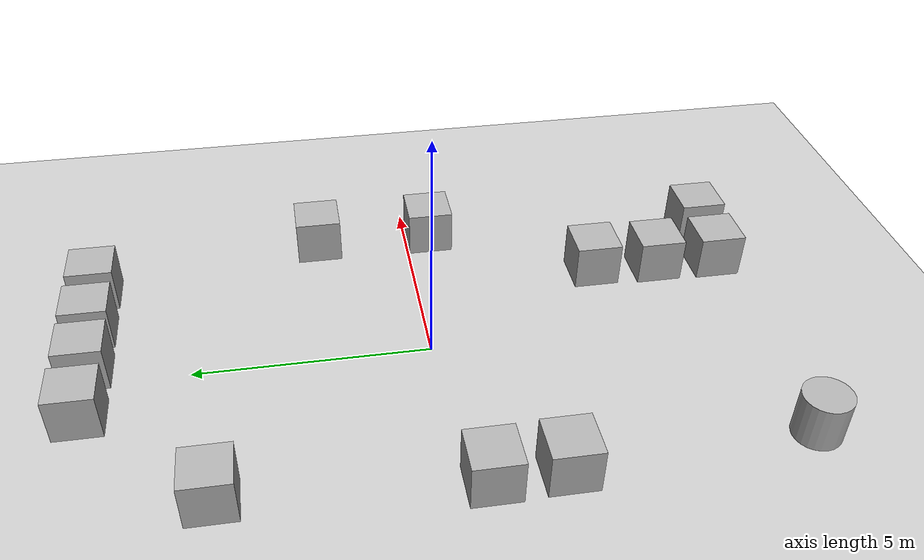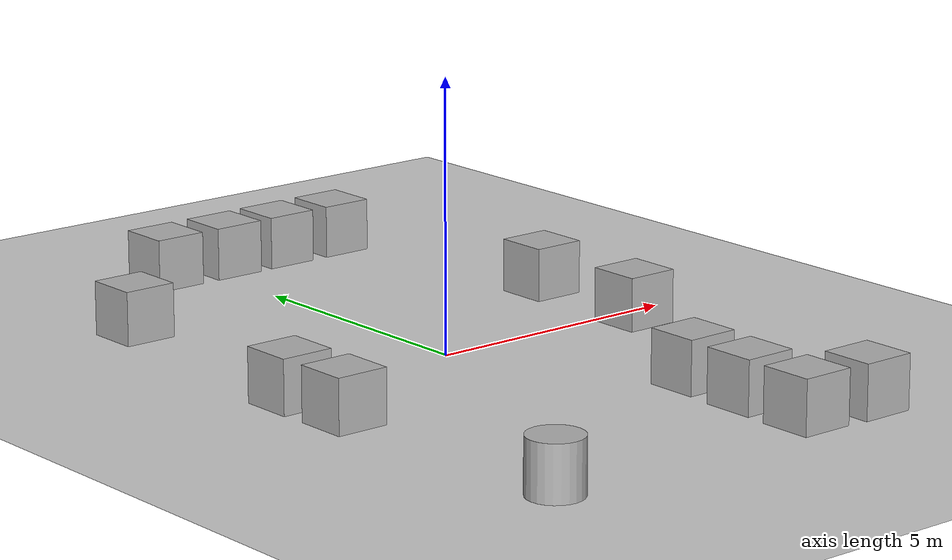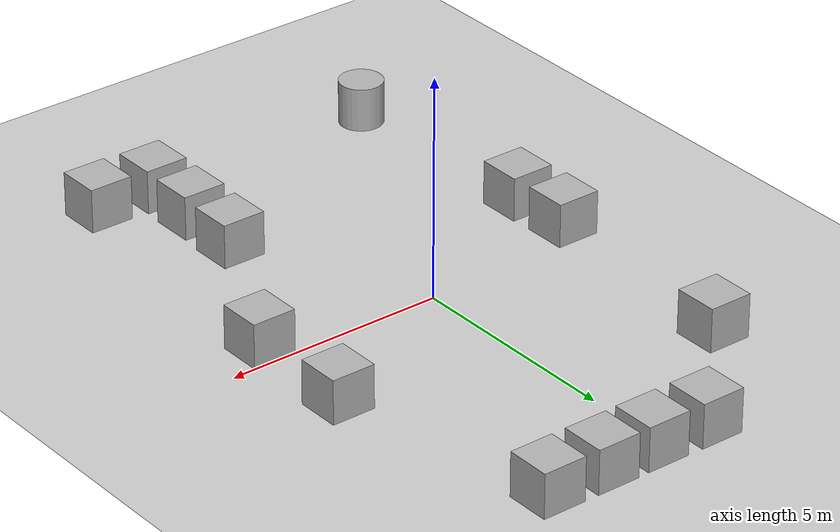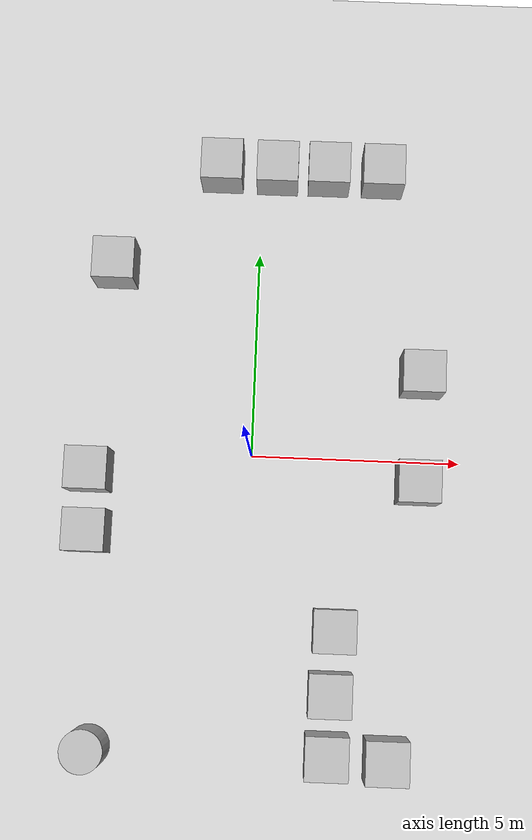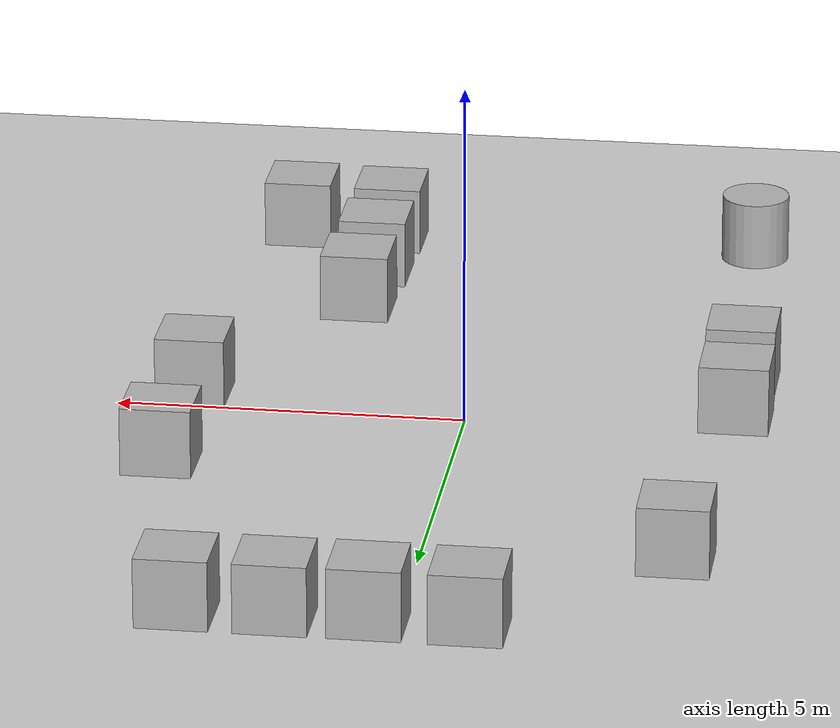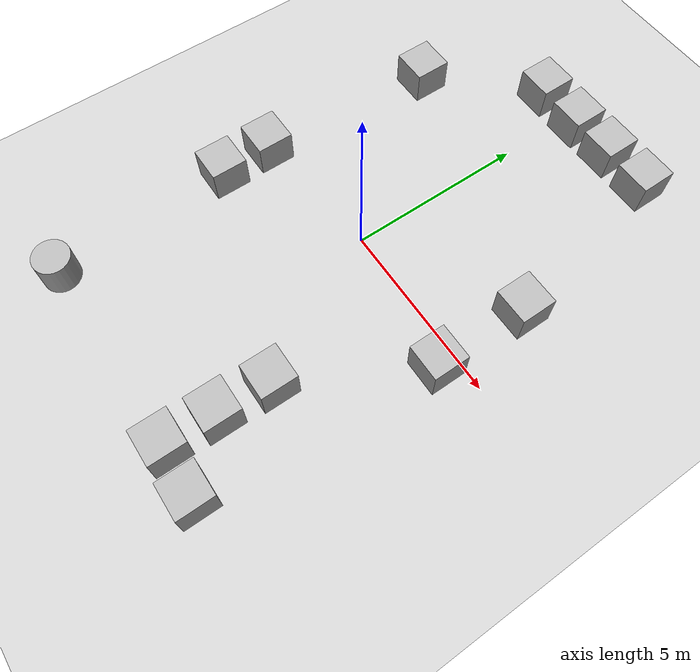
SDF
<sdf version="1.10">
 <world name="world1">
  <physics name="1ms" type="ignored">
   <max_step_size>0.001</max_step_size>
   <real_time_factor>1</real_time_factor>
   <real_time_update_rate>1000</real_time_update_rate>
  </physics>
  <plugin name="gz::sim::systems::Physics" filename="gz-sim-physics-system"/>
  <plugin name="gz::sim::systems::UserCommands" filename="gz-sim-user-commands-system"/>
  <plugin name="gz::sim::systems::SceneBroadcaster" filename="gz-sim-scene-broadcaster-system"/>
  <plugin name="gz::sim::systems::Contact" filename="gz-sim-contact-system"/>
  <plugin name="gz::sim::systems::Sensors" filename="gz-sim-sensors-system">
   <render_engine>ogre2</render_engine>
  </plugin>
  <plugin name="gz::sim::systems::Imu" filename="gz-sim-imu-system"/>
  <gravity>0 0 -9.8000000000000007</gravity>
  <magnetic_field>5.5644999999999998e-06 2.2875799999999999e-05 -4.2388400000000002e-05</magnetic_field>
  <atmosphere type="adiabatic"/>
  <scene>
   <ambient>0.400000006 0.400000006 0.400000006 1</ambient>
   <background>0.699999988 0.699999988 0.699999988 1</background>
   <shadows>true</shadows>
  </scene>
  <model name="ground_plane">
   <static>true</static>
   <link name="link">
    <collision name="collision">
     <geometry><plane><normal>0 0 1</normal><size>100 100</size></plane></geometry>
    </collision>
    <visual name="visual">
     <geometry><plane><normal>0 0 1</normal><size>100 100</size></plane></geometry>
     <material>
      <ambient>0.800000012 0.800000012 0.800000012 1</ambient>
      <diffuse>0.800000012 0.800000012 0.800000012 1</diffuse>
      <specular>0.800000012 0.800000012 0.800000012 1</specular>
     </material>
    </visual>
    <inertial>
     <mass>1</mass>
     <inertia><ixx>1</ixx><ixy>0</ixy><ixz>0</ixz><iyy>1</iyy><iyz>0</iyz><izz>1</izz></inertia>
    </inertial>
   </link>
  </model>
  <model name="box">
   <pose>2.1043132491753633 -4.062245548405631 0.49999999961383335 2.2173168376473367e-21 -7.874254222518039e-21 -1.0220815815193421e-21</pose>
   <link name="box_link">
    <inertial>
     <inertia><ixx>0.16666</ixx><ixy>0</ixy><ixz>0</ixz><iyy>0.16666</iyy><iyz>0</iyz><izz>0.16666</izz></inertia>
     <mass>1</mass>
    </inertial>
    <collision name="box_collision"><geometry><box><size>1 1 1</size></box></geometry></collision>
    <visual name="box_visual">
     <geometry><box><size>1 1 1</size></box></geometry>
     <material>
      <ambient>0.300000012 0.300000012 0.300000012 1</ambient>
      <diffuse>0.699999988 0.699999988 0.699999988 1</diffuse>
      <specular>1 1 1 1</specular>
     </material>
    </visual>
   </link>
   <static>false</static>
  </model>
  <model name="cylinder">
   <pose>-3.5293640432081261 -6.9421882413476128 0.49999944330790008 -6.060487416560336e-21 6.7803504527240404e-20 5.9195822013363546e-21</pose>
   <link name="cylinder_link">
    <inertial>
     <inertia>
      <ixx>0.14580000000000001</ixx>
      <ixy>0</ixy>
      <ixz>0</ixz>
      <iyy>0.14580000000000001</iyy>
      <iyz>0</iyz>
      <izz>0.125</izz>
     </inertia>
     <mass>1</mass>
    </inertial>
    <collision name="cylinder_collision">
     <geometry><cylinder><radius>0.5</radius><length>1</length></cylinder></geometry>
    </collision>
    <visual name="cylinder_visual">
     <geometry><cylinder><radius>0.5</radius><length>1</length></cylinder></geometry>
     <material>
      <ambient>0.300000012 0.300000012 0.300000012 1</ambient>
      <diffuse>0.699999988 0.699999988 0.699999988 1</diffuse>
      <specular>1 1 1 1</specular>
     </material>
    </visual>
   </link>
   <static>false</static>
  </model>
  <model name="box_0">
   <pose>4.0153260231018066 2.0732800960540771 0.49999999980497606 6.4161747848937477e-22 -3.7891236528671386e-21 -1.4224602295442765e-21</pose>
   <link name="box_link">
    <inertial>
     <inertia><ixx>0.16666</ixx><ixy>0</ixy><ixz>0</ixz><iyy>0.16666</iyy><iyz>0</iyz><izz>0.16666</izz></inertia>
     <mass>1</mass>
    </inertial>
    <collision name="box_collision"><geometry><box><size>1 1 1</size></box></geometry></collision>
    <visual name="box_visual">
     <geometry><box><size>1 1 1</size></box></geometry>
     <material>
      <ambient>0.300000012 0.300000012 0.300000012 1</ambient>
      <diffuse>0.699999988 0.699999988 0.699999988 1</diffuse>
      <specular>1 1 1 1</specular>
     </material>
    </visual>
   </link>
   <static>false</static>
  </model>
  <model name="box_1">
   <pose>-3.4693177423851069 4.5488528938618709 0.49999999961383335 2.2173168376473367e-21 -7.874254222518039e-21 -1.0220815815193421e-21</pose>
   <link name="box_link">
    <inertial>
     <inertia><ixx>0.16666</ixx><ixy>0</ixy><ixz>0</ixz><iyy>0.16666</iyy><iyz>0</iyz><izz>0.16666</izz></inertia>
     <mass>1</mass>
    </inertial>
    <collision name="box_collision"><geometry><box><size>1 1 1</size></box></geometry></collision>
    <visual name="box_visual">
     <geometry><box><size>1 1 1</size></box></geometry>
     <material>
      <ambient>0.300000012 0.300000012 0.300000012 1</ambient>
      <diffuse>0.699999988 0.699999988 0.699999988 1</diffuse>
      <specular>1 1 1 1</specular>
     </material>
    </visual>
   </link>
   <static>false</static>
  </model>
  <model name="box_2">
   <pose>0.36498421430587769 7.0897002220153809 0.49999999980497606 1.5282380184882812e-20 -1.1848821427094392e-20 -1.2445356815215727e-22</pose>
   <link name="box_link">
    <inertial>
     <inertia><ixx>0.16666</ixx><ixy>0</ixy><ixz>0</ixz><iyy>0.16666</iyy><iyz>0</iyz><izz>0.16666</izz></inertia>
     <mass>1</mass>
    </inertial>
    <collision name="box_collision"><geometry><box><size>1 1 1</size></box></geometry></collision>
    <visual name="box_visual">
     <geometry><box><size>1 1 1</size></box></geometry>
     <material>
      <ambient>0.300000012 0.300000012 0.300000012 1</ambient>
      <diffuse>0.699999988 0.699999988 0.699999988 1</diffuse>
      <specular>1 1 1 1</specular>
     </material>
    </visual>
   </link>
   <static>false</static>
  </model>
  <model name="box_3">
   <pose>3.9696661569093501 -0.53197440774561255 0.49999999980497606 -1.2983313967284496e-22 1.7665415001559131e-21 7.4418389397464927e-22</pose>
   <link name="box_link">
    <inertial>
     <inertia><ixx>0.16666</ixx><ixy>0</ixy><ixz>0</ixz><iyy>0.16666</iyy><iyz>0</iyz><izz>0.16666</izz></inertia>
     <mass>1</mass>
    </inertial>
    <collision name="box_collision"><geometry><box><size>1 1 1</size></box></geometry></collision>
    <visual name="box_visual">
     <geometry><box><size>1 1 1</size></box></geometry>
     <material>
      <ambient>0.300000012 0.300000012 0.300000012 1</ambient>
      <diffuse>0.699999988 0.699999988 0.699999988 1</diffuse>
      <specular>1 1 1 1</specular>
     </material>
    </visual>
   </link>
   <static>false</static>
  </model>
  <model name="box_4">
   <pose>1.6181659698486328 7.1010198593139648 0.49999999980497606 1.4765625807577881e-20 -7.3173255572240675e-21 -1.0040576639327147e-21</pose>
   <link name="box_link">
    <inertial>
     <inertia><ixx>0.16666</ixx><ixy>0</ixy><ixz>0</ixz><iyy>0.16666</iyy><iyz>0</iyz><izz>0.16666</izz></inertia>
     <mass>1</mass>
    </inertial>
    <collision name="box_collision"><geometry><box><size>1 1 1</size></box></geometry></collision>
    <visual name="box_visual">
     <geometry><box><size>1 1 1</size></box></geometry>
     <material>
      <ambient>0.300000012 0.300000012 0.300000012 1</ambient>
      <diffuse>0.699999988 0.699999988 0.699999988 1</diffuse>
      <specular>1 1 1 1</specular>
     </material>
    </visual>
   </link>
   <static>false</static>
  </model>
  <model name="box_5">
   <pose>2.0440408005197317 -5.514430727292293 0.49999999980497606 1.0048033485058014e-21 -2.4640853465547739e-21 -3.9210766489770922e-22</pose>
   <link name="box_link">
    <inertial>
     <inertia><ixx>0.16666</ixx><ixy>0</ixy><ixz>0</ixz><iyy>0.16666</iyy><iyz>0</iyz><izz>0.16666</izz></inertia>
     <mass>1</mass>
    </inertial>
    <collision name="box_collision"><geometry><box><size>1 1 1</size></box></geometry></collision>
    <visual name="box_visual">
     <geometry><box><size>1 1 1</size></box></geometry>
     <material>
      <ambient>0.300000012 0.300000012 0.300000012 1</ambient>
      <diffuse>0.699999988 0.699999988 0.699999988 1</diffuse>
      <specular>1 1 1 1</specular>
     </material>
    </visual>
   </link>
   <static>false</static>
  </model>
  <model name="box_6">
   <pose>2.0082449868233652 -6.9027803127018821 0.49999999980497606 1.0048033485058014e-21 -2.4640853465547739e-21 -3.9210766489770922e-22</pose>
   <link name="box_link">
    <inertial>
     <inertia><ixx>0.16666</ixx><ixy>0</ixy><ixz>0</ixz><iyy>0.16666</iyy><iyz>0</iyz><izz>0.16666</izz></inertia>
     <mass>1</mass>
    </inertial>
    <collision name="box_collision"><geometry><box><size>1 1 1</size></box></geometry></collision>
    <visual name="box_visual">
     <geometry><box><size>1 1 1</size></box></geometry>
     <material>
      <ambient>0.300000012 0.300000012 0.300000012 1</ambient>
      <diffuse>0.699999988 0.699999988 0.699999988 1</diffuse>
      <specular>1 1 1 1</specular>
     </material>
    </visual>
   </link>
   <static>false</static>
  </model>
  <model name="box_7">
   <pose>3.3801522254943848 -6.9534201622009277 0.49999999980497606 5.7155621579102632e-21 -6.5691289902797882e-21 -1.948037898629101e-22</pose>
   <link name="box_link">
    <inertial>
     <inertia><ixx>0.16666</ixx><ixy>0</ixy><ixz>0</ixz><iyy>0.16666</iyy><iyz>0</iyz><izz>0.16666</izz></inertia>
     <mass>1</mass>
    </inertial>
    <collision name="box_collision"><geometry><box><size>1 1 1</size></box></geometry></collision>
    <visual name="box_visual">
     <geometry><box><size>1 1 1</size></box></geometry>
     <material>
      <ambient>0.300000012 0.300000012 0.300000012 1</ambient>
      <diffuse>0.699999988 0.699999988 0.699999988 1</diffuse>
      <specular>1 1 1 1</specular>
     </material>
    </visual>
   </link>
   <static>false</static>
  </model>
  <model name="box_8">
   <pose>-3.8261153021218912 -0.50421541274277959 0.49999999980497606 4.510122445939706e-21 -4.811254041875492e-21 7.5000850150618032e-22</pose>
   <link name="box_link">
    <inertial>
     <inertia><ixx>0.16666</ixx><ixy>0</ixy><ixz>0</ixz><iyy>0.16666</iyy><iyz>0</iyz><izz>0.16666</izz></inertia>
     <mass>1</mass>
    </inertial>
    <collision name="box_collision"><geometry><box><size>1 1 1</size></box></geometry></collision>
    <visual name="box_visual">
     <geometry><box><size>1 1 1</size></box></geometry>
     <material>
      <ambient>0.300000012 0.300000012 0.300000012 1</ambient>
      <diffuse>0.699999988 0.699999988 0.699999988 1</diffuse>
      <specular>1 1 1 1</specular>
     </material>
    </visual>
   </link>
   <static>false</static>
  </model>
  <model name="box_9">
   <pose>-3.7912817001342773 -1.9467400312423706 0.49999999980497606 6.7760579306190881e-21 -1.1067267553950163e-20 4.0071036179897783e-22</pose>
   <link name="box_link">
    <inertial>
     <inertia><ixx>0.16666</ixx><ixy>0</ixy><ixz>0</ixz><iyy>0.16666</iyy><iyz>0</iyz><izz>0.16666</izz></inertia>
     <mass>1</mass>
    </inertial>
    <collision name="box_collision"><geometry><box><size>1 1 1</size></box></geometry></collision>
    <visual name="box_visual">
     <geometry><box><size>1 1 1</size></box></geometry>
     <material>
      <ambient>0.300000012 0.300000012 0.300000012 1</ambient>
      <diffuse>0.699999988 0.699999988 0.699999988 1</diffuse>
      <specular>1 1 1 1</specular>
     </material>
    </visual>
   </link>
   <static>false</static>
  </model>
  <model name="box_10">
   <pose>2.941514305700633 7.0999967465121729 0.49999999980497606 1.0048033485058014e-21 -2.4640853465547739e-21 -3.9210766489770922e-22</pose>
   <link name="box_link">
    <inertial>
     <inertia><ixx>0.16666</ixx><ixy>0</ixy><ixz>0</ixz><iyy>0.16666</iyy><iyz>0</iyz><izz>0.16666</izz></inertia>
     <mass>1</mass>
    </inertial>
    <collision name="box_collision"><geometry><box><size>1 1 1</size></box></geometry></collision>
    <visual name="box_visual">
     <geometry><box><size>1 1 1</size></box></geometry>
     <material>
      <ambient>0.300000012 0.300000012 0.300000012 1</ambient>
      <diffuse>0.699999988 0.699999988 0.699999988 1</diffuse>
      <specular>1 1 1 1</specular>
     </material>
    </visual>
   </link>
   <static>false</static>
  </model>
  <model name="box_11">
   <pose>-0.98741772057155641 7.1000657543445156 0.49999999980497606 1.0048033485058014e-21 -2.4640853465547739e-21 -3.9210766489770922e-22</pose>
   <link name="box_link">
    <inertial>
     <inertia><ixx>0.16666</ixx><ixy>0</ixy><ixz>0</ixz><iyy>0.16666</iyy><iyz>0</iyz><izz>0.16666</izz></inertia>
     <mass>1</mass>
    </inertial>
    <collision name="box_collision"><geometry><box><size>1 1 1</size></box></geometry></collision>
    <visual name="box_visual">
     <geometry><box><size>1 1 1</size></box></geometry>
     <material>
      <ambient>0.300000012 0.300000012 0.300000012 1</ambient>
      <diffuse>0.699999988 0.699999988 0.699999988 1</diffuse>
      <specular>1 1 1 1</specular>
     </material>
    </visual>
   </link>
   <static>false</static>
  </model>
  <light name="sun" type="directional">
   <pose>0 0 10 0 0 0</pose>
   <intensity>1</intensity>
   <direction>-0.5 0.10000000000000001 -0.90000000000000002</direction>
   <diffuse>0.800000012 0.800000012 0.800000012 1</diffuse>
   <specular>0.200000003 0.200000003 0.200000003 1</specular>
   <attenuation>
    <range>1000</range>
    <linear>0.01</linear>
    <constant>0.90000000000000002</constant>
    <quadratic>0.001</quadratic>
   </attenuation>
   <spot><inner_angle>0</inner_angle><outer_angle>0</outer_angle><falloff>0</falloff></spot>
  </light>
 </world>
</sdf>
